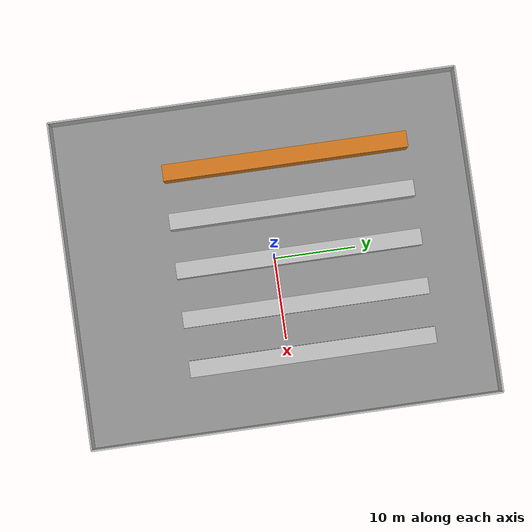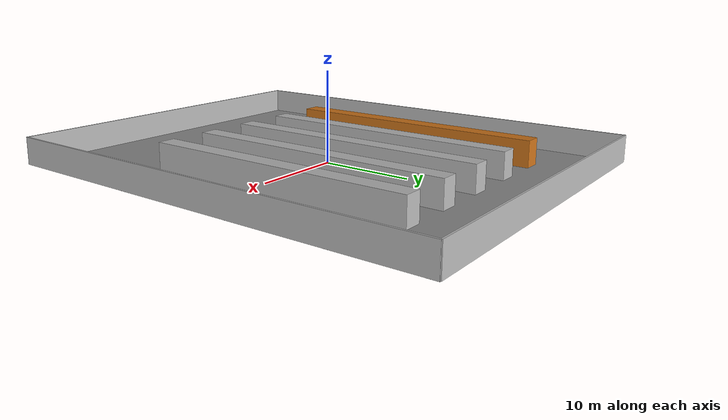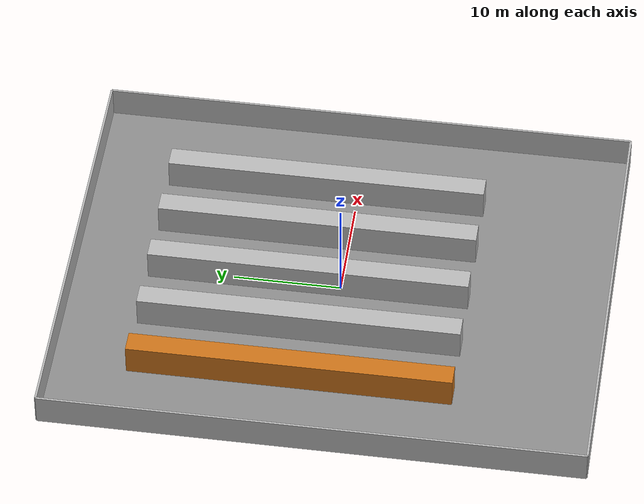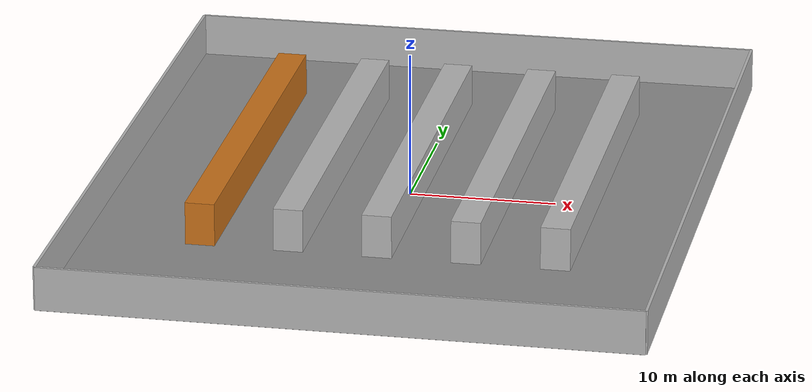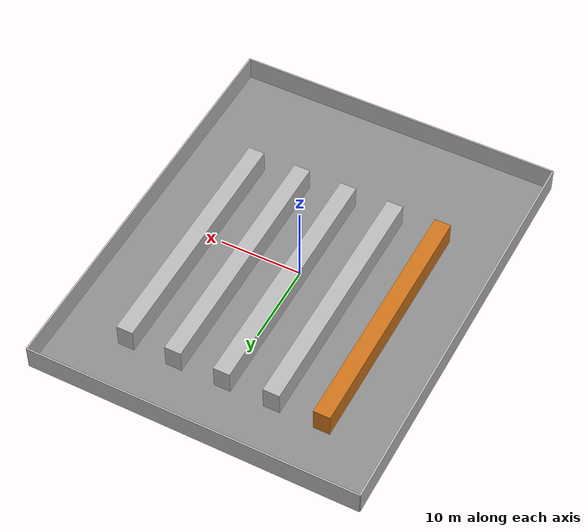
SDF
<?xml version="1.0"?><sdf version="1.9"><world name="warehouse_40x50">
<spherical_coordinates><surface_model>EARTH_WGS84</surface_model><world_frame_orientation>ENU</world_frame_orientation><latitude_deg>31.2304</latitude_deg><longitude_deg>121.4737</longitude_deg><elevation>4.0</elevation><heading_deg>0</heading_deg></spherical_coordinates>
<physics name="default" type="ignored"><max_step_size>0.001</max_step_size><real_time_factor>1</real_time_factor></physics>
<plugin filename="gz-sim-physics-system" name="gz::sim::systems::Physics"/><plugin filename="gz-sim-sensors-system" name="gz::sim::systems::Sensors"><render_engine>ogre2</render_engine></plugin><plugin filename="gz-sim-navsat-system" name="gz::sim::systems::NavSat"/><plugin filename="gz-sim-user-commands-system" name="gz::sim::systems::UserCommands"/><plugin filename="gz-sim-scene-broadcaster-system" name="gz::sim::systems::SceneBroadcaster"/>
<light name="sun" type="directional"><pose>0 0 10 0 0 0</pose><diffuse>0.9 0.9 0.9 1</diffuse><direction>-0.3 0.2 -1</direction></light>
<model name="floor"><static>true</static><link name="link"><collision name="collision"><geometry><box><size>40 50 0.1</size></box></geometry></collision><visual name="visual"><geometry><box><size>40 50 0.1</size></box></geometry><material><diffuse>0.55 0.55 0.55 1</diffuse></material></visual></link></model>
<model name="walls"><static>true</static><link name="link">
<collision name="north"><pose>0 25 1.5 0 0 0</pose><geometry><box><size>40 0.2 3</size></box></geometry></collision><visual name="north_v"><pose>0 25 1.5 0 0 0</pose><geometry><box><size>40 0.2 3</size></box></geometry></visual>
<collision name="south"><pose>0 -25 1.5 0 0 0</pose><geometry><box><size>40 0.2 3</size></box></geometry></collision><visual name="south_v"><pose>0 -25 1.5 0 0 0</pose><geometry><box><size>40 0.2 3</size></box></geometry></visual>
<collision name="east"><pose>20 0 1.5 0 0 0</pose><geometry><box><size>0.2 50 3</size></box></geometry></collision><visual name="east_v"><pose>20 0 1.5 0 0 0</pose><geometry><box><size>0.2 50 3</size></box></geometry></visual>
<collision name="west"><pose>-20 0 1.5 0 0 0</pose><geometry><box><size>0.2 50 3</size></box></geometry></collision><visual name="west_v"><pose>-20 0 1.5 0 0 0</pose><geometry><box><size>0.2 50 3</size></box></geometry></visual>
</link></model>
<model name="rack_rows"><static>true</static><link name="link">
<collision name="r1"><pose>-12 3 1.5 0 0 0</pose><geometry><box><size>2 30 3</size></box></geometry></collision><visual name="r1v"><pose>-12 3 1.5 0 0 0</pose><geometry><box><size>2 30 3</size></box></geometry><material><diffuse>0.8 0.45 0.1 1</diffuse></material></visual>
<collision name="r2"><pose>-6 3 1.5 0 0 0</pose><geometry><box><size>2 30 3</size></box></geometry></collision><visual name="r2v"><pose>-6 3 1.5 0 0 0</pose><geometry><box><size>2 30 3</size></box></geometry></visual>
<collision name="r3"><pose>0 3 1.5 0 0 0</pose><geometry><box><size>2 30 3</size></box></geometry></collision><visual name="r3v"><pose>0 3 1.5 0 0 0</pose><geometry><box><size>2 30 3</size></box></geometry></visual>
<collision name="r4"><pose>6 3 1.5 0 0 0</pose><geometry><box><size>2 30 3</size></box></geometry></collision><visual name="r4v"><pose>6 3 1.5 0 0 0</pose><geometry><box><size>2 30 3</size></box></geometry></visual>
<collision name="r5"><pose>12 3 1.5 0 0 0</pose><geometry><box><size>2 30 3</size></box></geometry></collision><visual name="r5v"><pose>12 3 1.5 0 0 0</pose><geometry><box><size>2 30 3</size></box></geometry></visual>
</link></model></world></sdf>
